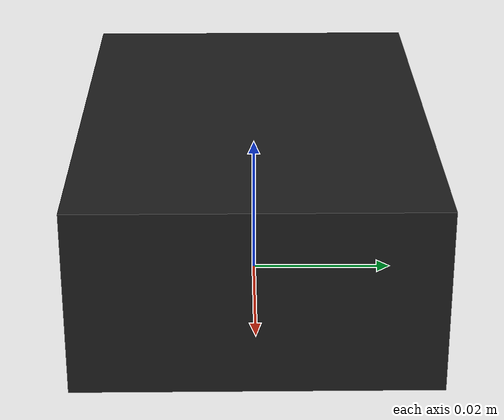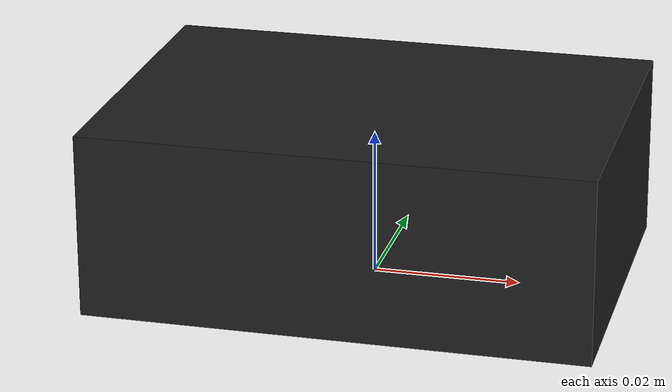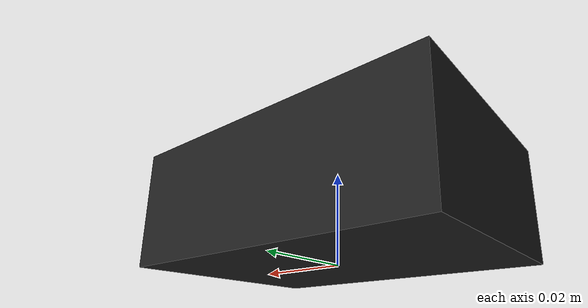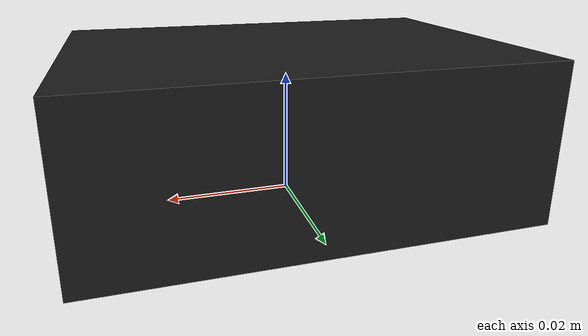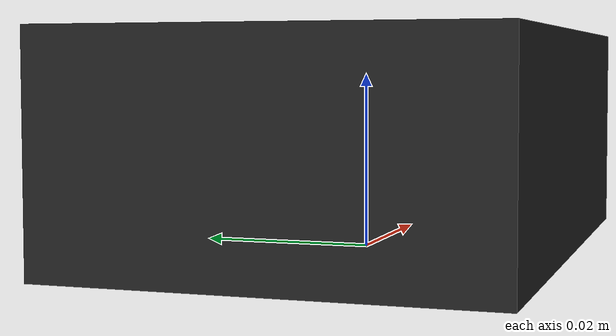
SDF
<sdf version='1.6'>
  <model name='rectangular'>
    <link name='rectangular_link'>
      <pose frame=''>0 0 0 0 -0 0</pose>
      <inertial>
        <pose frame=''>0 0 0.025 0 -0 0</pose>
        <mass>0.6528</mass>
        <inertia>
          <ixx>0.00063735</ixx>
          <ixy>-3.95282e-20</ixy>
          <ixz>-1.33866e-20</ixz>
          <iyy>0.00114218</iyy>
          <iyz>2.41362e-20</iyz>
          <izz>0.00150753</izz>
        </inertia>
      </inertial>
      <collision name='rectangular_link_collision'>
        <pose frame=''>0 0 0 0 -0 0</pose>
        <geometry>
          <mesh>
            <scale>0.5 0.5 0.5</scale>
            <uri>model://rectangular/meshes/rectangular_link.STL</uri>
          </mesh>
        </geometry>
      </collision>
      <visual name='rectangular_link_visual'>
        <pose frame=''>0 0 0 0 -0 0</pose>
        <geometry>
          <mesh>
            <scale>0.5 0.5 0.5</scale>
            <uri>model://rectangular/meshes/rectangular_link.STL</uri>
          </mesh>
        </geometry>
        <material>
        <script>
          <name>Gazebo/Black</name>
          <uri>file://media/materials/scripts/gazebo.material</uri>
        </script>
      </material>
      </visual>
    </link>
  </model>
</sdf>
